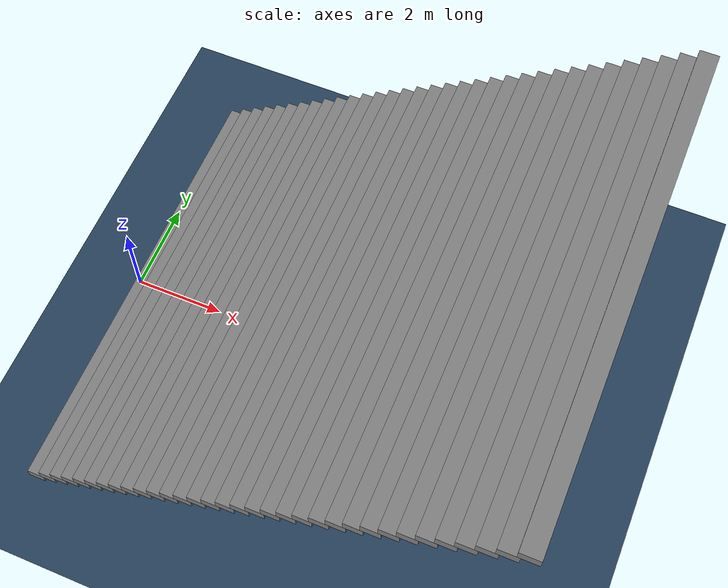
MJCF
<mujoco model="stairs_up_9">
  <!-- Terrain Type: stairs_up, Level: 9, Stairs step height: 0.2200 -->
  <statistic center="0 0 0.1" extent="0.8" />
  <visual>
    <headlight diffuse="0.6 0.6 0.6" ambient="0.3 0.3 0.3" specular="0 0 0" />
    <rgba haze="0.15 0.25 0.35 1" />
    <global azimuth="-130" elevation="-20" />
  </visual>
  <asset>
    <texture type="skybox" builtin="gradient" rgb1="0.3 0.5 0.7" rgb2="0 0 0" width="512" height="3072" />
    <texture type="2d" name="groundplane" builtin="checker" mark="edge" rgb1="0.2 0.3 0.4" rgb2="0.1 0.2 0.3" markrgb="0.8 0.8 0.8" width="300" height="300" />
    <material name="groundplane" texture="groundplane" texuniform="true" texrepeat="5 5" reflectance="0.0" />
  </asset>
  <worldbody>
    <light pos="0 0 1.5" dir="0 0 -1" directional="true" />
    <geom name="floor" size="0 0 0.05" type="plane" material="groundplane" />
    <geom pos="0.155 0.0 0.11000000000000001" type="box" size="0.186 5.0 0.11000000000000001" quat="1.0 0.0 0.0 0.0" />
    <geom pos="0.46499999999999997 0.0 0.33000000000000007" type="box" size="0.186 5.0 0.11000000000000001" quat="1.0 0.0 0.0 0.0" />
    <geom pos="0.7749999999999999 0.0 0.55" type="box" size="0.186 5.0 0.11000000000000001" quat="1.0 0.0 0.0 0.0" />
    <geom pos="1.085 0.0 0.77" type="box" size="0.186 5.0 0.11000000000000001" quat="1.0 0.0 0.0 0.0" />
    <geom pos="1.395 0.0 0.99" type="box" size="0.186 5.0 0.11000000000000001" quat="1.0 0.0 0.0 0.0" />
    <geom pos="1.705 0.0 1.21" type="box" size="0.186 5.0 0.11000000000000001" quat="1.0 0.0 0.0 0.0" />
    <geom pos="2.015 0.0 1.43" type="box" size="0.186 5.0 0.11000000000000001" quat="1.0 0.0 0.0 0.0" />
    <geom pos="2.325 0.0 1.65" type="box" size="0.186 5.0 0.11000000000000001" quat="1.0 0.0 0.0 0.0" />
    <geom pos="2.6350000000000002 0.0 1.8699999999999999" type="box" size="0.186 5.0 0.11000000000000001" quat="1.0 0.0 0.0 0.0" />
    <geom pos="2.9450000000000003 0.0 2.09" type="box" size="0.186 5.0 0.11000000000000001" quat="1.0 0.0 0.0 0.0" />
    <geom pos="3.2550000000000003 0.0 2.31" type="box" size="0.186 5.0 0.11000000000000001" quat="1.0 0.0 0.0 0.0" />
    <geom pos="3.5650000000000004 0.0 2.5300000000000002" type="box" size="0.186 5.0 0.11000000000000001" quat="1.0 0.0 0.0 0.0" />
    <geom pos="3.8750000000000004 0.0 2.7500000000000004" type="box" size="0.186 5.0 0.11000000000000001" quat="1.0 0.0 0.0 0.0" />
    <geom pos="4.1850000000000005 0.0 2.9700000000000006" type="box" size="0.186 5.0 0.11000000000000001" quat="1.0 0.0 0.0 0.0" />
    <geom pos="4.495 0.0 3.190000000000001" type="box" size="0.186 5.0 0.11000000000000001" quat="1.0 0.0 0.0 0.0" />
    <geom pos="4.805 0.0 3.410000000000001" type="box" size="0.186 5.0 0.11000000000000001" quat="1.0 0.0 0.0 0.0" />
    <geom pos="5.114999999999999 0.0 3.6300000000000012" type="box" size="0.186 5.0 0.11000000000000001" quat="1.0 0.0 0.0 0.0" />
    <geom pos="5.424999999999999 0.0 3.8500000000000014" type="box" size="0.186 5.0 0.11000000000000001" quat="1.0 0.0 0.0 0.0" />
    <geom pos="5.7349999999999985 0.0 4.070000000000001" type="box" size="0.186 5.0 0.11000000000000001" quat="1.0 0.0 0.0 0.0" />
    <geom pos="6.044999999999998 0.0 4.290000000000001" type="box" size="0.186 5.0 0.11000000000000001" quat="1.0 0.0 0.0 0.0" />
    <geom pos="6.354999999999998 0.0 4.510000000000001" type="box" size="0.186 5.0 0.11000000000000001" quat="1.0 0.0 0.0 0.0" />
    <geom pos="6.664999999999997 0.0 4.73" type="box" size="0.186 5.0 0.11000000000000001" quat="1.0 0.0 0.0 0.0" />
    <geom pos="6.974999999999997 0.0 4.95" type="box" size="0.186 5.0 0.11000000000000001" quat="1.0 0.0 0.0 0.0" />
    <geom pos="7.284999999999997 0.0 5.17" type="box" size="0.186 5.0 0.11000000000000001" quat="1.0 0.0 0.0 0.0" />
    <geom pos="7.594999999999996 0.0 5.39" type="box" size="0.186 5.0 0.11000000000000001" quat="1.0 0.0 0.0 0.0" />
    <geom pos="7.904999999999996 0.0 5.609999999999999" type="box" size="0.186 5.0 0.11000000000000001" quat="1.0 0.0 0.0 0.0" />
    <geom pos="8.214999999999996 0.0 5.829999999999999" type="box" size="0.186 5.0 0.11000000000000001" quat="1.0 0.0 0.0 0.0" />
    <geom pos="8.524999999999997 0.0 6.049999999999999" type="box" size="0.186 5.0 0.11000000000000001" quat="1.0 0.0 0.0 0.0" />
    <geom pos="8.834999999999997 0.0 6.269999999999999" type="box" size="0.186 5.0 0.11000000000000001" quat="1.0 0.0 0.0 0.0" />
    <geom pos="9.144999999999998 0.0 6.489999999999998" type="box" size="0.186 5.0 0.11000000000000001" quat="1.0 0.0 0.0 0.0" />
    <geom pos="9.454999999999998 0.0 6.709999999999998" type="box" size="0.186 5.0 0.11000000000000001" quat="1.0 0.0 0.0 0.0" />
    <geom pos="9.764999999999999 0.0 6.929999999999998" type="box" size="0.186 5.0 0.11000000000000001" quat="1.0 0.0 0.0 0.0" />
    <geom pos="10.075 0.0 7.149999999999998" type="box" size="0.186 5.0 0.11000000000000001" quat="1.0 0.0 0.0 0.0" />
  </worldbody>
</mujoco>
